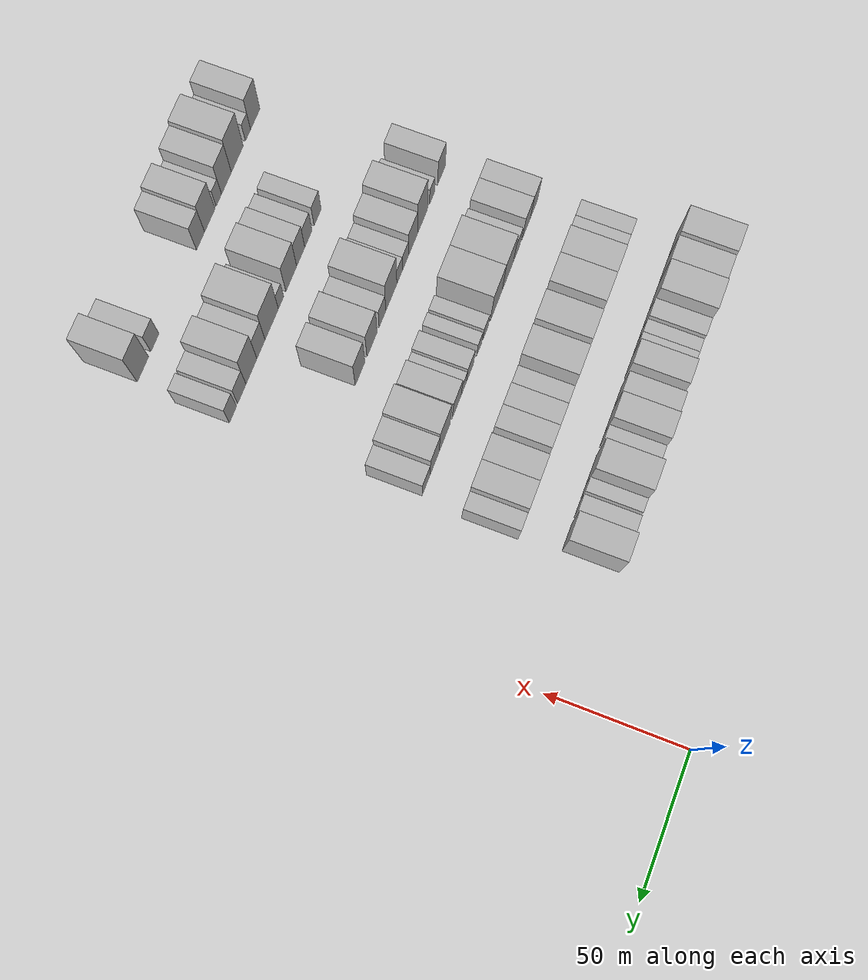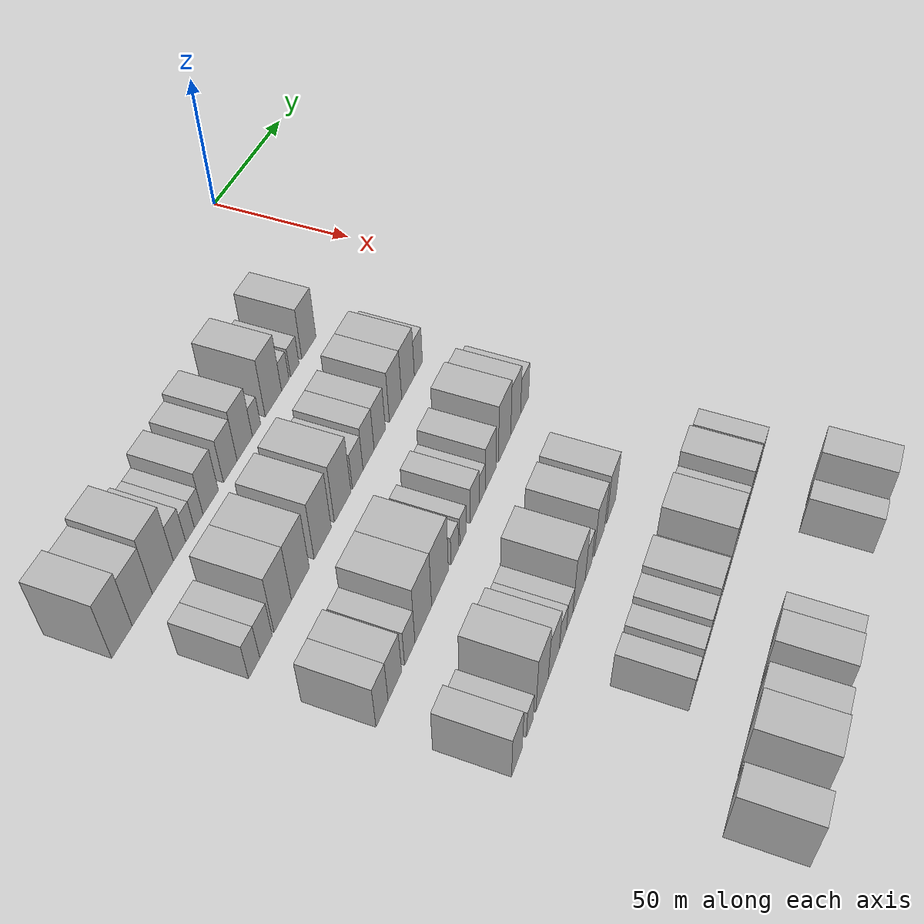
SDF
<sdf version="1.6">
 <world name="default">
  <model name="building_47">
   <static>1</static>
   <pose>50.0000 -161.9570 0 0.000000 0.000000 0.000000</pose>
   <link name="link">
    <pose>0 0 12.00 0 0 0</pose>
    <collision name="collision"><geometry><box><size>20.0000 9.9998 24.0000</size></box></geometry></collision>
    <visual name="visual">
     <cast_shadows>0</cast_shadows>
     <geometry><box><size>20.0000 9.9998 24.0000</size></box></geometry>
     <material>
      <script>
       <uri>model://HANNAS_wall/materials/scripts</uri>
       <uri>model://HANNAS_wall/materials/textures</uri>
       <name>vrc/HANNAS_wall</name>
      </script>
     </material>
    </visual>
   </link>
  </model>
  <model name="building_48">
   <static>1</static>
   <pose>50.0000 -151.8180 0 0.000000 0.000000 0.000000</pose>
   <link name="link">
    <pose>0 0 10.50 0 0 0</pose>
    <collision name="collision"><geometry><box><size>20.0000 10.2782 21.0000</size></box></geometry></collision>
    <visual name="visual">
     <cast_shadows>0</cast_shadows>
     <geometry><box><size>20.0000 10.2782 21.0000</size></box></geometry>
     <material>
      <script>
       <uri>model://HANNAS_wall/materials/scripts</uri>
       <uri>model://HANNAS_wall/materials/textures</uri>
       <name>vrc/HANNAS_wall</name>
      </script>
     </material>
    </visual>
   </link>
  </model>
  <model name="building_49">
   <static>1</static>
   <pose>50.0000 -141.1139 0 0.000000 0.000000 0.000000</pose>
   <link name="link">
    <pose>0 0 12.00 0 0 0</pose>
    <collision name="collision"><geometry><box><size>20.0000 11.1299 24.0000</size></box></geometry></collision>
    <visual name="visual">
     <cast_shadows>0</cast_shadows>
     <geometry><box><size>20.0000 11.1299 24.0000</size></box></geometry>
     <material>
      <script>
       <uri>model://HANNAS_wall/materials/scripts</uri>
       <uri>model://HANNAS_wall/materials/textures</uri>
       <name>vrc/HANNAS_wall</name>
      </script>
     </material>
    </visual>
   </link>
  </model>
  <model name="building_50">
   <static>1</static>
   <pose>50.0000 -132.1988 0 0.000000 0.000000 0.000000</pose>
   <link name="link">
    <pose>0 0 7.50 0 0 0</pose>
    <collision name="collision"><geometry><box><size>20.0000 6.7003 15.0000</size></box></geometry></collision>
    <visual name="visual">
     <cast_shadows>0</cast_shadows>
     <geometry><box><size>20.0000 6.7003 15.0000</size></box></geometry>
     <material>
      <script>
       <uri>model://HANNAS_wall/materials/scripts</uri>
       <uri>model://HANNAS_wall/materials/textures</uri>
       <name>vrc/HANNAS_wall</name>
      </script>
     </material>
    </visual>
   </link>
  </model>
  <model name="building_51">
   <static>1</static>
   <pose>50.0000 -126.4093 0 0.000000 0.000000 0.000000</pose>
   <link name="link">
    <pose>0 0 6.00 0 0 0</pose>
    <collision name="collision"><geometry><box><size>20.0000 4.8786 12.0000</size></box></geometry></collision>
    <visual name="visual">
     <cast_shadows>0</cast_shadows>
     <geometry><box><size>20.0000 4.8786 12.0000</size></box></geometry>
     <material>
      <script>
       <uri>model://HANNAS_wall/materials/scripts</uri>
       <uri>model://HANNAS_wall/materials/textures</uri>
       <name>vrc/HANNAS_wall</name>
      </script>
     </material>
    </visual>
   </link>
  </model>
  <model name="building_52">
   <static>1</static>
   <pose>50.0000 -121.5417 0 0.000000 0.000000 0.000000</pose>
   <link name="link">
    <pose>0 0 6.00 0 0 0</pose>
    <collision name="collision"><geometry><box><size>20.0000 4.8564 12.0000</size></box></geometry></collision>
    <visual name="visual">
     <cast_shadows>0</cast_shadows>
     <geometry><box><size>20.0000 4.8564 12.0000</size></box></geometry>
     <material>
      <script>
       <uri>model://HANNAS_wall/materials/scripts</uri>
       <uri>model://HANNAS_wall/materials/textures</uri>
       <name>vrc/HANNAS_wall</name>
      </script>
     </material>
    </visual>
   </link>
  </model>
  <model name="building_53">
   <static>1</static>
   <pose>50.0000 -114.6435 0 0.000000 0.000000 0.000000</pose>
   <link name="link">
    <pose>0 0 9.00 0 0 0</pose>
    <collision name="collision"><geometry><box><size>20.0000 8.9400 18.0000</size></box></geometry></collision>
    <visual name="visual">
     <cast_shadows>0</cast_shadows>
     <geometry><box><size>20.0000 8.9400 18.0000</size></box></geometry>
     <material>
      <script>
       <uri>model://HANNAS_wall/materials/scripts</uri>
       <uri>model://HANNAS_wall/materials/textures</uri>
       <name>vrc/HANNAS_wall</name>
      </script>
     </material>
    </visual>
   </link>
  </model>
  <model name="building_54">
   <static>1</static>
   <pose>50.0000 -103.0503 0 0.000000 0.000000 0.000000</pose>
   <link name="link">
    <pose>0 0 9.00 0 0 0</pose>
    <collision name="collision"><geometry><box><size>20.0000 8.2464 18.0000</size></box></geometry></collision>
    <visual name="visual">
     <cast_shadows>0</cast_shadows>
     <geometry><box><size>20.0000 8.2464 18.0000</size></box></geometry>
     <material>
      <script>
       <uri>model://HANNAS_wall/materials/scripts</uri>
       <uri>model://HANNAS_wall/materials/textures</uri>
       <name>vrc/HANNAS_wall</name>
      </script>
     </material>
    </visual>
   </link>
  </model>
  <model name="building_55">
   <static>1</static>
   <pose>50.0000 -94.1643 0 0.000000 0.000000 0.000000</pose>
   <link name="link">
    <pose>0 0 10.50 0 0 0</pose>
    <collision name="collision"><geometry><box><size>20.0000 9.5256 21.0000</size></box></geometry></collision>
    <visual name="visual">
     <cast_shadows>0</cast_shadows>
     <geometry><box><size>20.0000 9.5256 21.0000</size></box></geometry>
     <material>
      <script>
       <uri>model://HANNAS_wall/materials/scripts</uri>
       <uri>model://HANNAS_wall/materials/textures</uri>
       <name>vrc/HANNAS_wall</name>
      </script>
     </material>
    </visual>
   </link>
  </model>
  <model name="building_56">
   <static>1</static>
   <pose>50.0000 -86.7919 0 0.000000 0.000000 0.000000</pose>
   <link name="link">
    <pose>0 0 6.00 0 0 0</pose>
    <collision name="collision"><geometry><box><size>20.0000 5.2192 12.0000</size></box></geometry></collision>
    <visual name="visual">
     <cast_shadows>0</cast_shadows>
     <geometry><box><size>20.0000 5.2192 12.0000</size></box></geometry>
     <material>
      <script>
       <uri>model://HANNAS_wall/materials/scripts</uri>
       <uri>model://HANNAS_wall/materials/textures</uri>
       <name>vrc/HANNAS_wall</name>
      </script>
     </material>
    </visual>
   </link>
  </model>
  <model name="building_57">
   <static>1</static>
   <pose>50.0000 -75.7936 0 0.000000 0.000000 0.000000</pose>
   <link name="link">
    <pose>0 0 12.00 0 0 0</pose>
    <collision name="collision"><geometry><box><size>20.0000 10.7773 24.0000</size></box></geometry></collision>
    <visual name="visual">
     <cast_shadows>0</cast_shadows>
     <geometry><box><size>20.0000 10.7773 24.0000</size></box></geometry>
     <material>
      <script>
       <uri>model://HANNAS_wall/materials/scripts</uri>
       <uri>model://HANNAS_wall/materials/textures</uri>
       <name>vrc/HANNAS_wall</name>
      </script>
     </material>
    </visual>
   </link>
  </model>
  <model name="building_58">
   <static>1</static>
   <pose>50.0000 -67.8428 0 0.000000 0.000000 0.000000</pose>
   <link name="link">
    <pose>0 0 6.00 0 0 0</pose>
    <collision name="collision"><geometry><box><size>20.0000 5.1243 12.0000</size></box></geometry></collision>
    <visual name="visual">
     <cast_shadows>0</cast_shadows>
     <geometry><box><size>20.0000 5.1243 12.0000</size></box></geometry>
     <material>
      <script>
       <uri>model://HANNAS_wall/materials/scripts</uri>
       <uri>model://HANNAS_wall/materials/textures</uri>
       <name>vrc/HANNAS_wall</name>
      </script>
     </material>
    </visual>
   </link>
  </model>
  <model name="building_59">
   <static>1</static>
   <pose>50.0000 -61.3414 0 0.000000 0.000000 0.000000</pose>
   <link name="link">
    <pose>0 0 6.00 0 0 0</pose>
    <collision name="collision"><geometry><box><size>20.0000 5.8786 12.0000</size></box></geometry></collision>
    <visual name="visual">
     <cast_shadows>0</cast_shadows>
     <geometry><box><size>20.0000 5.8786 12.0000</size></box></geometry>
     <material>
      <script>
       <uri>model://HANNAS_wall/materials/scripts</uri>
       <uri>model://HANNAS_wall/materials/textures</uri>
       <name>vrc/HANNAS_wall</name>
      </script>
     </material>
    </visual>
   </link>
  </model>
  <model name="building_60">
   <static>1</static>
   <pose>50.0000 -51.3345 0 0.000000 0.000000 0.000000</pose>
   <link name="link">
    <pose>0 0 10.50 0 0 0</pose>
    <collision name="collision"><geometry><box><size>20.0000 10.1353 21.0000</size></box></geometry></collision>
    <visual name="visual">
     <cast_shadows>0</cast_shadows>
     <geometry><box><size>20.0000 10.1353 21.0000</size></box></geometry>
     <material>
      <script>
       <uri>model://HANNAS_wall/materials/scripts</uri>
       <uri>model://HANNAS_wall/materials/textures</uri>
       <name>vrc/HANNAS_wall</name>
      </script>
     </material>
    </visual>
   </link>
  </model>
  <model name="building_168">
   <static>1</static>
   <pose>85.0000 -157.0738 0 0.000000 0.000000 0.000000</pose>
   <link name="link">
    <pose>0 0 7.50 0 0 0</pose>
    <collision name="collision"><geometry><box><size>20.0000 6.1484 15.0000</size></box></geometry></collision>
    <visual name="visual">
     <cast_shadows>0</cast_shadows>
     <geometry><box><size>20.0000 6.1484 15.0000</size></box></geometry>
     <material>
      <script>
       <uri>model://HANNAS_wall/materials/scripts</uri>
       <uri>model://HANNAS_wall/materials/textures</uri>
       <name>vrc/HANNAS_wall</name>
      </script>
     </material>
    </visual>
   </link>
  </model>
  <model name="building_169">
   <static>1</static>
   <pose>85.0000 -150.4906 0 0.000000 0.000000 0.000000</pose>
   <link name="link">
    <pose>0 0 7.50 0 0 0</pose>
    <collision name="collision"><geometry><box><size>20.0000 7.0179 15.0000</size></box></geometry></collision>
    <visual name="visual">
     <cast_shadows>0</cast_shadows>
     <geometry><box><size>20.0000 7.0179 15.0000</size></box></geometry>
     <material>
      <script>
       <uri>model://HANNAS_wall/materials/scripts</uri>
       <uri>model://HANNAS_wall/materials/textures</uri>
       <name>vrc/HANNAS_wall</name>
      </script>
     </material>
    </visual>
   </link>
  </model>
  <model name="building_170">
   <static>1</static>
   <pose>85.0000 -140.8677 0 0.000000 0.000000 0.000000</pose>
   <link name="link">
    <pose>0 0 12.00 0 0 0</pose>
    <collision name="collision"><geometry><box><size>20.0000 10.2279 24.0000</size></box></geometry></collision>
    <visual name="visual">
     <cast_shadows>0</cast_shadows>
     <geometry><box><size>20.0000 10.2279 24.0000</size></box></geometry>
     <material>
      <script>
       <uri>model://HANNAS_wall/materials/scripts</uri>
       <uri>model://HANNAS_wall/materials/textures</uri>
       <name>vrc/HANNAS_wall</name>
      </script>
     </material>
    </visual>
   </link>
  </model>
  <model name="building_171">
   <static>1</static>
   <pose>85.0000 -130.3423 0 0.000000 0.000000 0.000000</pose>
   <link name="link">
    <pose>0 0 12.00 0 0 0</pose>
    <collision name="collision"><geometry><box><size>20.0000 10.8228 24.0000</size></box></geometry></collision>
    <visual name="visual">
     <cast_shadows>0</cast_shadows>
     <geometry><box><size>20.0000 10.8228 24.0000</size></box></geometry>
     <material>
      <script>
       <uri>model://HANNAS_wall/materials/scripts</uri>
       <uri>model://HANNAS_wall/materials/textures</uri>
       <name>vrc/HANNAS_wall</name>
      </script>
     </material>
    </visual>
   </link>
  </model>
  <model name="building_172">
   <static>1</static>
   <pose>85.0000 -116.4584 0 0.000000 0.000000 0.000000</pose>
   <link name="link">
    <pose>0 0 12.00 0 0 0</pose>
    <collision name="collision"><geometry><box><size>20.0000 10.9451 24.0000</size></box></geometry></collision>
    <visual name="visual">
     <cast_shadows>0</cast_shadows>
     <geometry><box><size>20.0000 10.9451 24.0000</size></box></geometry>
     <material>
      <script>
       <uri>model://HANNAS_wall/materials/scripts</uri>
       <uri>model://HANNAS_wall/materials/textures</uri>
       <name>vrc/HANNAS_wall</name>
      </script>
     </material>
    </visual>
   </link>
  </model>
  <model name="building_173">
   <static>1</static>
   <pose>85.0000 -103.4264 0 0.000000 0.000000 0.000000</pose>
   <link name="link">
    <pose>0 0 12.00 0 0 0</pose>
    <collision name="collision"><geometry><box><size>20.0000 11.1188 24.0000</size></box></geometry></collision>
    <visual name="visual">
     <cast_shadows>0</cast_shadows>
     <geometry><box><size>20.0000 11.1188 24.0000</size></box></geometry>
     <material>
      <script>
       <uri>model://HANNAS_wall/materials/scripts</uri>
       <uri>model://HANNAS_wall/materials/textures</uri>
       <name>vrc/HANNAS_wall</name>
      </script>
     </material>
    </visual>
   </link>
  </model>
  <model name="building_174">
   <static>1</static>
   <pose>85.0000 -93.2065 0 0.000000 0.000000 0.000000</pose>
   <link name="link">
    <pose>0 0 7.50 0 0 0</pose>
    <collision name="collision"><geometry><box><size>20.0000 7.3210 15.0000</size></box></geometry></collision>
    <visual name="visual">
     <cast_shadows>0</cast_shadows>
     <geometry><box><size>20.0000 7.3210 15.0000</size></box></geometry>
     <material>
      <script>
       <uri>model://HANNAS_wall/materials/scripts</uri>
       <uri>model://HANNAS_wall/materials/textures</uri>
       <name>vrc/HANNAS_wall</name>
      </script>
     </material>
    </visual>
   </link>
  </model>
  <model name="building_175">
   <static>1</static>
   <pose>85.0000 -85.6010 0 0.000000 0.000000 0.000000</pose>
   <link name="link">
    <pose>0 0 9.00 0 0 0</pose>
    <collision name="collision"><geometry><box><size>20.0000 7.8901 18.0000</size></box></geometry></collision>
    <visual name="visual">
     <cast_shadows>0</cast_shadows>
     <geometry><box><size>20.0000 7.8901 18.0000</size></box></geometry>
     <material>
      <script>
       <uri>model://HANNAS_wall/materials/scripts</uri>
       <uri>model://HANNAS_wall/materials/textures</uri>
       <name>vrc/HANNAS_wall</name>
      </script>
     </material>
    </visual>
   </link>
  </model>
  <model name="building_176">
   <static>1</static>
   <pose>85.0000 -77.5546 0 0.000000 0.000000 0.000000</pose>
   <link name="link">
    <pose>0 0 9.00 0 0 0</pose>
    <collision name="collision"><geometry><box><size>20.0000 8.2029 18.0000</size></box></geometry></collision>
    <visual name="visual">
     <cast_shadows>0</cast_shadows>
     <geometry><box><size>20.0000 8.2029 18.0000</size></box></geometry>
     <material>
      <script>
       <uri>model://HANNAS_wall/materials/scripts</uri>
       <uri>model://HANNAS_wall/materials/textures</uri>
       <name>vrc/HANNAS_wall</name>
      </script>
     </material>
    </visual>
   </link>
  </model>
  <model name="building_177">
   <static>1</static>
   <pose>85.0000 -65.7735 0 0.000000 0.000000 0.000000</pose>
   <link name="link">
    <pose>0 0 10.50 0 0 0</pose>
    <collision name="collision"><geometry><box><size>20.0000 9.3593 21.0000</size></box></geometry></collision>
    <visual name="visual">
     <cast_shadows>0</cast_shadows>
     <geometry><box><size>20.0000 9.3593 21.0000</size></box></geometry>
     <material>
      <script>
       <uri>model://HANNAS_wall/materials/scripts</uri>
       <uri>model://HANNAS_wall/materials/textures</uri>
       <name>vrc/HANNAS_wall</name>
      </script>
     </material>
    </visual>
   </link>
  </model>
  <model name="building_178">
   <static>1</static>
   <pose>85.0000 -56.1351 0 0.000000 0.000000 0.000000</pose>
   <link name="link">
    <pose>0 0 10.50 0 0 0</pose>
    <collision name="collision"><geometry><box><size>20.0000 9.9176 21.0000</size></box></geometry></collision>
    <visual name="visual">
     <cast_shadows>0</cast_shadows>
     <geometry><box><size>20.0000 9.9176 21.0000</size></box></geometry>
     <material>
      <script>
       <uri>model://HANNAS_wall/materials/scripts</uri>
       <uri>model://HANNAS_wall/materials/textures</uri>
       <name>vrc/HANNAS_wall</name>
      </script>
     </material>
    </visual>
   </link>
  </model>
  <model name="building_179">
   <static>1</static>
   <pose>85.0000 -47.9434 0 0.000000 0.000000 0.000000</pose>
   <link name="link">
    <pose>0 0 7.50 0 0 0</pose>
    <collision name="collision"><geometry><box><size>20.0000 6.4659 15.0000</size></box></geometry></collision>
    <visual name="visual">
     <cast_shadows>0</cast_shadows>
     <geometry><box><size>20.0000 6.4659 15.0000</size></box></geometry>
     <material>
      <script>
       <uri>model://HANNAS_wall/materials/scripts</uri>
       <uri>model://HANNAS_wall/materials/textures</uri>
       <name>vrc/HANNAS_wall</name>
      </script>
     </material>
    </visual>
   </link>
  </model>
  <model name="building_294">
   <static>1</static>
   <pose>120.0000 -157.5382 0 0.000000 0.000000 0.000000</pose>
   <link name="link">
    <pose>0 0 9.00 0 0 0</pose>
    <collision name="collision"><geometry><box><size>20.0000 7.5005 18.0000</size></box></geometry></collision>
    <visual name="visual">
     <cast_shadows>0</cast_shadows>
     <geometry><box><size>20.0000 7.5005 18.0000</size></box></geometry>
     <material>
      <script>
       <uri>model://HANNAS_wall/materials/scripts</uri>
       <uri>model://HANNAS_wall/materials/textures</uri>
       <name>vrc/HANNAS_wall</name>
      </script>
     </material>
    </visual>
   </link>
  </model>
  <model name="building_295">
   <static>1</static>
   <pose>120.0000 -149.4985 0 0.000000 0.000000 0.000000</pose>
   <link name="link">
    <pose>0 0 9.00 0 0 0</pose>
    <collision name="collision"><geometry><box><size>20.0000 8.5791 18.0000</size></box></geometry></collision>
    <visual name="visual">
     <cast_shadows>0</cast_shadows>
     <geometry><box><size>20.0000 8.5791 18.0000</size></box></geometry>
     <material>
      <script>
       <uri>model://HANNAS_wall/materials/scripts</uri>
       <uri>model://HANNAS_wall/materials/textures</uri>
       <name>vrc/HANNAS_wall</name>
      </script>
     </material>
    </visual>
   </link>
  </model>
  <model name="building_296">
   <static>1</static>
   <pose>120.0000 -139.7792 0 0.000000 0.000000 0.000000</pose>
   <link name="link">
    <pose>0 0 7.50 0 0 0</pose>
    <collision name="collision"><geometry><box><size>20.0000 6.8595 15.0000</size></box></geometry></collision>
    <visual name="visual">
     <cast_shadows>0</cast_shadows>
     <geometry><box><size>20.0000 6.8595 15.0000</size></box></geometry>
     <material>
      <script>
       <uri>model://HANNAS_wall/materials/scripts</uri>
       <uri>model://HANNAS_wall/materials/textures</uri>
       <name>vrc/HANNAS_wall</name>
      </script>
     </material>
    </visual>
   </link>
  </model>
  <model name="building_297">
   <static>1</static>
   <pose>120.0000 -130.6181 0 0.000000 0.000000 0.000000</pose>
   <link name="link">
    <pose>0 0 12.00 0 0 0</pose>
    <collision name="collision"><geometry><box><size>20.0000 11.4626 24.0000</size></box></geometry></collision>
    <visual name="visual">
     <cast_shadows>0</cast_shadows>
     <geometry><box><size>20.0000 11.4626 24.0000</size></box></geometry>
     <material>
      <script>
       <uri>model://HANNAS_wall/materials/scripts</uri>
       <uri>model://HANNAS_wall/materials/textures</uri>
       <name>vrc/HANNAS_wall</name>
      </script>
     </material>
    </visual>
   </link>
  </model>
  <model name="building_298">
   <static>1</static>
   <pose>120.0000 -118.9094 0 0.000000 0.000000 0.000000</pose>
   <link name="link">
    <pose>0 0 12.00 0 0 0</pose>
    <collision name="collision"><geometry><box><size>20.0000 11.9548 24.0000</size></box></geometry></collision>
    <visual name="visual">
     <cast_shadows>0</cast_shadows>
     <geometry><box><size>20.0000 11.9548 24.0000</size></box></geometry>
     <material>
      <script>
       <uri>model://HANNAS_wall/materials/scripts</uri>
       <uri>model://HANNAS_wall/materials/textures</uri>
       <name>vrc/HANNAS_wall</name>
      </script>
     </material>
    </visual>
   </link>
  </model>
  <model name="building_299">
   <static>1</static>
   <pose>120.0000 -108.1491 0 0.000000 0.000000 0.000000</pose>
   <link name="link">
    <pose>0 0 6.00 0 0 0</pose>
    <collision name="collision"><geometry><box><size>20.0000 5.5658 12.0000</size></box></geometry></collision>
    <visual name="visual">
     <cast_shadows>0</cast_shadows>
     <geometry><box><size>20.0000 5.5658 12.0000</size></box></geometry>
     <material>
      <script>
       <uri>model://HANNAS_wall/materials/scripts</uri>
       <uri>model://HANNAS_wall/materials/textures</uri>
       <name>vrc/HANNAS_wall</name>
      </script>
     </material>
    </visual>
   </link>
  </model>
  <model name="building_300">
   <static>1</static>
   <pose>120.0000 -101.9015 0 0.000000 0.000000 0.000000</pose>
   <link name="link">
    <pose>0 0 6.00 0 0 0</pose>
    <collision name="collision"><geometry><box><size>20.0000 4.9295 12.0000</size></box></geometry></collision>
    <visual name="visual">
     <cast_shadows>0</cast_shadows>
     <geometry><box><size>20.0000 4.9295 12.0000</size></box></geometry>
     <material>
      <script>
       <uri>model://HANNAS_wall/materials/scripts</uri>
       <uri>model://HANNAS_wall/materials/textures</uri>
       <name>vrc/HANNAS_wall</name>
      </script>
     </material>
    </visual>
   </link>
  </model>
  <model name="building_301">
   <static>1</static>
   <pose>120.0000 -92.9369 0 0.000000 0.000000 0.000000</pose>
   <link name="link">
    <pose>0 0 7.50 0 0 0</pose>
    <collision name="collision"><geometry><box><size>20.0000 6.9997 15.0000</size></box></geometry></collision>
    <visual name="visual">
     <cast_shadows>0</cast_shadows>
     <geometry><box><size>20.0000 6.9997 15.0000</size></box></geometry>
     <material>
      <script>
       <uri>model://HANNAS_wall/materials/scripts</uri>
       <uri>model://HANNAS_wall/materials/textures</uri>
       <name>vrc/HANNAS_wall</name>
      </script>
     </material>
    </visual>
   </link>
  </model>
  <model name="building_302">
   <static>1</static>
   <pose>120.0000 -86.9117 0 0.000000 0.000000 0.000000</pose>
   <link name="link">
    <pose>0 0 6.00 0 0 0</pose>
    <collision name="collision"><geometry><box><size>20.0000 5.0507 12.0000</size></box></geometry></collision>
    <visual name="visual">
     <cast_shadows>0</cast_shadows>
     <geometry><box><size>20.0000 5.0507 12.0000</size></box></geometry>
     <material>
      <script>
       <uri>model://HANNAS_wall/materials/scripts</uri>
       <uri>model://HANNAS_wall/materials/textures</uri>
       <name>vrc/HANNAS_wall</name>
      </script>
     </material>
    </visual>
   </link>
  </model>
  <model name="building_303">
   <static>1</static>
   <pose>120.0000 -80.0144 0 0.000000 0.000000 0.000000</pose>
   <link name="link">
    <pose>0 0 9.00 0 0 0</pose>
    <collision name="collision"><geometry><box><size>20.0000 8.7440 18.0000</size></box></geometry></collision>
    <visual name="visual">
     <cast_shadows>0</cast_shadows>
     <geometry><box><size>20.0000 8.7440 18.0000</size></box></geometry>
     <material>
      <script>
       <uri>model://HANNAS_wall/materials/scripts</uri>
       <uri>model://HANNAS_wall/materials/textures</uri>
       <name>vrc/HANNAS_wall</name>
      </script>
     </material>
    </visual>
   </link>
  </model>
  <model name="building_304">
   <static>1</static>
   <pose>120.0000 -68.3629 0 0.000000 0.000000 0.000000</pose>
   <link name="link">
    <pose>0 0 12.00 0 0 0</pose>
    <collision name="collision"><geometry><box><size>20.0000 10.5590 24.0000</size></box></geometry></collision>
    <visual name="visual">
     <cast_shadows>0</cast_shadows>
     <geometry><box><size>20.0000 10.5590 24.0000</size></box></geometry>
     <material>
      <script>
       <uri>model://HANNAS_wall/materials/scripts</uri>
       <uri>model://HANNAS_wall/materials/textures</uri>
       <name>vrc/HANNAS_wall</name>
      </script>
     </material>
    </visual>
   </link>
  </model>
  <model name="building_305">
   <static>1</static>
   <pose>120.0000 -58.7427 0 0.000000 0.000000 0.000000</pose>
   <link name="link">
    <pose>0 0 10.50 0 0 0</pose>
    <collision name="collision"><geometry><box><size>20.0000 8.6813 21.0000</size></box></geometry></collision>
    <visual name="visual">
     <cast_shadows>0</cast_shadows>
     <geometry><box><size>20.0000 8.6813 21.0000</size></box></geometry>
     <material>
      <script>
       <uri>model://HANNAS_wall/materials/scripts</uri>
       <uri>model://HANNAS_wall/materials/textures</uri>
       <name>vrc/HANNAS_wall</name>
      </script>
     </material>
    </visual>
   </link>
  </model>
  <model name="building_306">
   <static>1</static>
   <pose>120.0000 -50.7534 0 0.000000 0.000000 0.000000</pose>
   <link name="link">
    <pose>0 0 7.50 0 0 0</pose>
    <collision name="collision"><geometry><box><size>20.0000 7.2975 15.0000</size></box></geometry></collision>
    <visual name="visual">
     <cast_shadows>0</cast_shadows>
     <geometry><box><size>20.0000 7.2975 15.0000</size></box></geometry>
     <material>
      <script>
       <uri>model://HANNAS_wall/materials/scripts</uri>
       <uri>model://HANNAS_wall/materials/textures</uri>
       <name>vrc/HANNAS_wall</name>
      </script>
     </material>
    </visual>
   </link>
  </model>
  <model name="building_416">
   <static>1</static>
   <pose>155.0000 -158.0634 0 0.000000 0.000000 0.000000</pose>
   <link name="link">
    <pose>0 0 9.00 0 0 0</pose>
    <collision name="collision"><geometry><box><size>20.0000 7.7922 18.0000</size></box></geometry></collision>
    <visual name="visual">
     <cast_shadows>0</cast_shadows>
     <geometry><box><size>20.0000 7.7922 18.0000</size></box></geometry>
     <material>
      <script>
       <uri>model://HANNAS_wall/materials/scripts</uri>
       <uri>model://HANNAS_wall/materials/textures</uri>
       <name>vrc/HANNAS_wall</name>
      </script>
     </material>
    </visual>
   </link>
  </model>
  <model name="building_417">
   <static>1</static>
   <pose>155.0000 -148.6372 0 0.000000 0.000000 0.000000</pose>
   <link name="link">
    <pose>0 0 6.00 0 0 0</pose>
    <collision name="collision"><geometry><box><size>20.0000 5.0602 12.0000</size></box></geometry></collision>
    <visual name="visual">
     <cast_shadows>0</cast_shadows>
     <geometry><box><size>20.0000 5.0602 12.0000</size></box></geometry>
     <material>
      <script>
       <uri>model://HANNAS_wall/materials/scripts</uri>
       <uri>model://HANNAS_wall/materials/textures</uri>
       <name>vrc/HANNAS_wall</name>
      </script>
     </material>
    </visual>
   </link>
  </model>
  <model name="building_418">
   <static>1</static>
   <pose>155.0000 -139.2772 0 0.000000 0.000000 0.000000</pose>
   <link name="link">
    <pose>0 0 12.00 0 0 0</pose>
    <collision name="collision"><geometry><box><size>20.0000 9.6598 24.0000</size></box></geometry></collision>
    <visual name="visual">
     <cast_shadows>0</cast_shadows>
     <geometry><box><size>20.0000 9.6598 24.0000</size></box></geometry>
     <material>
      <script>
       <uri>model://HANNAS_wall/materials/scripts</uri>
       <uri>model://HANNAS_wall/materials/textures</uri>
       <name>vrc/HANNAS_wall</name>
      </script>
     </material>
    </visual>
   </link>
  </model>
  <model name="building_419">
   <static>1</static>
   <pose>155.0000 -129.9913 0 0.000000 0.000000 0.000000</pose>
   <link name="link">
    <pose>0 0 9.00 0 0 0</pose>
    <collision name="collision"><geometry><box><size>20.0000 8.9119 18.0000</size></box></geometry></collision>
    <visual name="visual">
     <cast_shadows>0</cast_shadows>
     <geometry><box><size>20.0000 8.9119 18.0000</size></box></geometry>
     <material>
      <script>
       <uri>model://HANNAS_wall/materials/scripts</uri>
       <uri>model://HANNAS_wall/materials/textures</uri>
       <name>vrc/HANNAS_wall</name>
      </script>
     </material>
    </visual>
   </link>
  </model>
  <model name="building_420">
   <static>1</static>
   <pose>155.0000 -122.6003 0 0.000000 0.000000 0.000000</pose>
   <link name="link">
    <pose>0 0 6.00 0 0 0</pose>
    <collision name="collision"><geometry><box><size>20.0000 5.8702 12.0000</size></box></geometry></collision>
    <visual name="visual">
     <cast_shadows>0</cast_shadows>
     <geometry><box><size>20.0000 5.8702 12.0000</size></box></geometry>
     <material>
      <script>
       <uri>model://HANNAS_wall/materials/scripts</uri>
       <uri>model://HANNAS_wall/materials/textures</uri>
       <name>vrc/HANNAS_wall</name>
      </script>
     </material>
    </visual>
   </link>
  </model>
  <model name="building_421">
   <static>1</static>
   <pose>155.0000 -116.9389 0 0.000000 0.000000 0.000000</pose>
   <link name="link">
    <pose>0 0 6.00 0 0 0</pose>
    <collision name="collision"><geometry><box><size>20.0000 5.4526 12.0000</size></box></geometry></collision>
    <visual name="visual">
     <cast_shadows>0</cast_shadows>
     <geometry><box><size>20.0000 5.4526 12.0000</size></box></geometry>
     <material>
      <script>
       <uri>model://HANNAS_wall/materials/scripts</uri>
       <uri>model://HANNAS_wall/materials/textures</uri>
       <name>vrc/HANNAS_wall</name>
      </script>
     </material>
    </visual>
   </link>
  </model>
  <model name="building_422">
   <static>1</static>
   <pose>155.0000 -108.8960 0 0.000000 0.000000 0.000000</pose>
   <link name="link">
    <pose>0 0 12.00 0 0 0</pose>
    <collision name="collision"><geometry><box><size>20.0000 10.6330 24.0000</size></box></geometry></collision>
    <visual name="visual">
     <cast_shadows>0</cast_shadows>
     <geometry><box><size>20.0000 10.6330 24.0000</size></box></geometry>
     <material>
      <script>
       <uri>model://HANNAS_wall/materials/scripts</uri>
       <uri>model://HANNAS_wall/materials/textures</uri>
       <name>vrc/HANNAS_wall</name>
      </script>
     </material>
    </visual>
   </link>
  </model>
  <model name="building_423">
   <static>1</static>
   <pose>155.0000 -100.4445 0 0.000000 0.000000 0.000000</pose>
   <link name="link">
    <pose>0 0 7.50 0 0 0</pose>
    <collision name="collision"><geometry><box><size>20.0000 6.2701 15.0000</size></box></geometry></collision>
    <visual name="visual">
     <cast_shadows>0</cast_shadows>
     <geometry><box><size>20.0000 6.2701 15.0000</size></box></geometry>
     <material>
      <script>
       <uri>model://HANNAS_wall/materials/scripts</uri>
       <uri>model://HANNAS_wall/materials/textures</uri>
       <name>vrc/HANNAS_wall</name>
      </script>
     </material>
    </visual>
   </link>
  </model>
  <model name="building_424">
   <static>1</static>
   <pose>155.0000 -90.5461 0 0.000000 0.000000 0.000000</pose>
   <link name="link">
    <pose>0 0 10.50 0 0 0</pose>
    <collision name="collision"><geometry><box><size>20.0000 9.5267 21.0000</size></box></geometry></collision>
    <visual name="visual">
     <cast_shadows>0</cast_shadows>
     <geometry><box><size>20.0000 9.5267 21.0000</size></box></geometry>
     <material>
      <script>
       <uri>model://HANNAS_wall/materials/scripts</uri>
       <uri>model://HANNAS_wall/materials/textures</uri>
       <name>vrc/HANNAS_wall</name>
      </script>
     </material>
    </visual>
   </link>
  </model>
  <model name="building_425">
   <static>1</static>
   <pose>155.0000 -79.3172 0 0.000000 0.000000 0.000000</pose>
   <link name="link">
    <pose>0 0 10.50 0 0 0</pose>
    <collision name="collision"><geometry><box><size>20.0000 8.9310 21.0000</size></box></geometry></collision>
    <visual name="visual">
     <cast_shadows>0</cast_shadows>
     <geometry><box><size>20.0000 8.9310 21.0000</size></box></geometry>
     <material>
      <script>
       <uri>model://HANNAS_wall/materials/scripts</uri>
       <uri>model://HANNAS_wall/materials/textures</uri>
       <name>vrc/HANNAS_wall</name>
      </script>
     </material>
    </visual>
   </link>
  </model>
  <model name="building_542">
   <static>1</static>
   <pose>190.0000 -127.4809 0 0.000000 0.000000 0.000000</pose>
   <link name="link">
    <pose>0 0 7.50 0 0 0</pose>
    <collision name="collision"><geometry><box><size>20.0000 6.6501 15.0000</size></box></geometry></collision>
    <visual name="visual">
     <cast_shadows>0</cast_shadows>
     <geometry><box><size>20.0000 6.6501 15.0000</size></box></geometry>
     <material>
      <script>
       <uri>model://HANNAS_wall/materials/scripts</uri>
       <uri>model://HANNAS_wall/materials/textures</uri>
       <name>vrc/HANNAS_wall</name>
      </script>
     </material>
    </visual>
   </link>
  </model>
  <model name="building_543">
   <static>1</static>
   <pose>190.0000 -118.8023 0 0.000000 0.000000 0.000000</pose>
   <link name="link">
    <pose>0 0 7.50 0 0 0</pose>
    <collision name="collision"><geometry><box><size>20.0000 6.7070 15.0000</size></box></geometry></collision>
    <visual name="visual">
     <cast_shadows>0</cast_shadows>
     <geometry><box><size>20.0000 6.7070 15.0000</size></box></geometry>
     <material>
      <script>
       <uri>model://HANNAS_wall/materials/scripts</uri>
       <uri>model://HANNAS_wall/materials/textures</uri>
       <name>vrc/HANNAS_wall</name>
      </script>
     </material>
    </visual>
   </link>
  </model>
  <model name="building_544">
   <static>1</static>
   <pose>190.0000 -111.6887 0 0.000000 0.000000 0.000000</pose>
   <link name="link">
    <pose>0 0 9.00 0 0 0</pose>
    <collision name="collision"><geometry><box><size>20.0000 7.5203 18.0000</size></box></geometry></collision>
    <visual name="visual">
     <cast_shadows>0</cast_shadows>
     <geometry><box><size>20.0000 7.5203 18.0000</size></box></geometry>
     <material>
      <script>
       <uri>model://HANNAS_wall/materials/scripts</uri>
       <uri>model://HANNAS_wall/materials/textures</uri>
       <name>vrc/HANNAS_wall</name>
      </script>
     </material>
    </visual>
   </link>
  </model>
  <model name="building_545">
   <static>1</static>
   <pose>190.0000 -102.9376 0 0.000000 0.000000 0.000000</pose>
   <link name="link">
    <pose>0 0 10.50 0 0 0</pose>
    <collision name="collision"><geometry><box><size>20.0000 9.9818 21.0000</size></box></geometry></collision>
    <visual name="visual">
     <cast_shadows>0</cast_shadows>
     <geometry><box><size>20.0000 9.9818 21.0000</size></box></geometry>
     <material>
      <script>
       <uri>model://HANNAS_wall/materials/scripts</uri>
       <uri>model://HANNAS_wall/materials/textures</uri>
       <name>vrc/HANNAS_wall</name>
      </script>
     </material>
    </visual>
   </link>
  </model>
  <model name="building_546">
   <static>1</static>
   <pose>190.0000 -93.5176 0 0.000000 0.000000 0.000000</pose>
   <link name="link">
    <pose>0 0 6.00 0 0 0</pose>
    <collision name="collision"><geometry><box><size>20.0000 4.8582 12.0000</size></box></geometry></collision>
    <visual name="visual">
     <cast_shadows>0</cast_shadows>
     <geometry><box><size>20.0000 4.8582 12.0000</size></box></geometry>
     <material>
      <script>
       <uri>model://HANNAS_wall/materials/scripts</uri>
       <uri>model://HANNAS_wall/materials/textures</uri>
       <name>vrc/HANNAS_wall</name>
      </script>
     </material>
    </visual>
   </link>
  </model>
  <model name="building_547">
   <static>1</static>
   <pose>190.0000 -85.0967 0 0.000000 0.000000 0.000000</pose>
   <link name="link">
    <pose>0 0 12.00 0 0 0</pose>
    <collision name="collision"><geometry><box><size>20.0000 11.9838 24.0000</size></box></geometry></collision>
    <visual name="visual">
     <cast_shadows>0</cast_shadows>
     <geometry><box><size>20.0000 11.9838 24.0000</size></box></geometry>
     <material>
      <script>
       <uri>model://HANNAS_wall/materials/scripts</uri>
       <uri>model://HANNAS_wall/materials/textures</uri>
       <name>vrc/HANNAS_wall</name>
      </script>
     </material>
    </visual>
   </link>
  </model>
  <model name="building_548">
   <static>1</static>
   <pose>190.0000 -75.4051 0 0.000000 0.000000 0.000000</pose>
   <link name="link">
    <pose>0 0 9.00 0 0 0</pose>
    <collision name="collision"><geometry><box><size>20.0000 7.3994 18.0000</size></box></geometry></collision>
    <visual name="visual">
     <cast_shadows>0</cast_shadows>
     <geometry><box><size>20.0000 7.3994 18.0000</size></box></geometry>
     <material>
      <script>
       <uri>model://HANNAS_wall/materials/scripts</uri>
       <uri>model://HANNAS_wall/materials/textures</uri>
       <name>vrc/HANNAS_wall</name>
      </script>
     </material>
    </visual>
   </link>
  </model>
  <model name="building_549">
   <static>1</static>
   <pose>190.0000 -66.8447 0 0.000000 0.000000 0.000000</pose>
   <link name="link">
    <pose>0 0 12.00 0 0 0</pose>
    <collision name="collision"><geometry><box><size>20.0000 9.7215 24.0000</size></box></geometry></collision>
    <visual name="visual">
     <cast_shadows>0</cast_shadows>
     <geometry><box><size>20.0000 9.7215 24.0000</size></box></geometry>
     <material>
      <script>
       <uri>model://HANNAS_wall/materials/scripts</uri>
       <uri>model://HANNAS_wall/materials/textures</uri>
       <name>vrc/HANNAS_wall</name>
      </script>
     </material>
    </visual>
   </link>
  </model>
  <model name="building_550">
   <static>1</static>
   <pose>190.0000 -58.2932 0 0.000000 0.000000 0.000000</pose>
   <link name="link">
    <pose>0 0 7.50 0 0 0</pose>
    <collision name="collision"><geometry><box><size>20.0000 7.3815 15.0000</size></box></geometry></collision>
    <visual name="visual">
     <cast_shadows>0</cast_shadows>
     <geometry><box><size>20.0000 7.3815 15.0000</size></box></geometry>
     <material>
      <script>
       <uri>model://HANNAS_wall/materials/scripts</uri>
       <uri>model://HANNAS_wall/materials/textures</uri>
       <name>vrc/HANNAS_wall</name>
      </script>
     </material>
    </visual>
   </link>
  </model>
  <model name="building_551">
   <static>1</static>
   <pose>190.0000 -50.4479 0 0.000000 0.000000 0.000000</pose>
   <link name="link">
    <pose>0 0 7.50 0 0 0</pose>
    <collision name="collision"><geometry><box><size>20.0000 6.3090 15.0000</size></box></geometry></collision>
    <visual name="visual">
     <cast_shadows>0</cast_shadows>
     <geometry><box><size>20.0000 6.3090 15.0000</size></box></geometry>
     <material>
      <script>
       <uri>model://HANNAS_wall/materials/scripts</uri>
       <uri>model://HANNAS_wall/materials/textures</uri>
       <name>vrc/HANNAS_wall</name>
      </script>
     </material>
    </visual>
   </link>
  </model>
  <model name="building_667">
   <static>1</static>
   <pose>225.0000 -154.6159 0 0.000000 0.000000 0.000000</pose>
   <link name="link">
    <pose>0 0 10.50 0 0 0</pose>
    <collision name="collision"><geometry><box><size>20.0000 8.7183 21.0000</size></box></geometry></collision>
    <visual name="visual">
     <cast_shadows>0</cast_shadows>
     <geometry><box><size>20.0000 8.7183 21.0000</size></box></geometry>
     <material>
      <script>
       <uri>model://HANNAS_wall/materials/scripts</uri>
       <uri>model://HANNAS_wall/materials/textures</uri>
       <name>vrc/HANNAS_wall</name>
      </script>
     </material>
    </visual>
   </link>
  </model>
  <model name="building_668">
   <static>1</static>
   <pose>225.0000 -147.8542 0 0.000000 0.000000 0.000000</pose>
   <link name="link">
    <pose>0 0 6.00 0 0 0</pose>
    <collision name="collision"><geometry><box><size>20.0000 4.8052 12.0000</size></box></geometry></collision>
    <visual name="visual">
     <cast_shadows>0</cast_shadows>
     <geometry><box><size>20.0000 4.8052 12.0000</size></box></geometry>
     <material>
      <script>
       <uri>model://HANNAS_wall/materials/scripts</uri>
       <uri>model://HANNAS_wall/materials/textures</uri>
       <name>vrc/HANNAS_wall</name>
      </script>
     </material>
    </visual>
   </link>
  </model>
  <model name="building_669">
   <static>1</static>
   <pose>225.0000 -138.0123 0 0.000000 0.000000 0.000000</pose>
   <link name="link">
    <pose>0 0 12.00 0 0 0</pose>
    <collision name="collision"><geometry><box><size>20.0000 10.8786 24.0000</size></box></geometry></collision>
    <visual name="visual">
     <cast_shadows>0</cast_shadows>
     <geometry><box><size>20.0000 10.8786 24.0000</size></box></geometry>
     <material>
      <script>
       <uri>model://HANNAS_wall/materials/scripts</uri>
       <uri>model://HANNAS_wall/materials/textures</uri>
       <name>vrc/HANNAS_wall</name>
      </script>
     </material>
    </visual>
   </link>
  </model>
  <model name="building_670">
   <static>1</static>
   <pose>225.0000 -128.0513 0 0.000000 0.000000 0.000000</pose>
   <link name="link">
    <pose>0 0 10.50 0 0 0</pose>
    <collision name="collision"><geometry><box><size>20.0000 9.0433 21.0000</size></box></geometry></collision>
    <visual name="visual">
     <cast_shadows>0</cast_shadows>
     <geometry><box><size>20.0000 9.0433 21.0000</size></box></geometry>
     <material>
      <script>
       <uri>model://HANNAS_wall/materials/scripts</uri>
       <uri>model://HANNAS_wall/materials/textures</uri>
       <name>vrc/HANNAS_wall</name>
      </script>
     </material>
    </visual>
   </link>
  </model>
  <model name="building_671">
   <static>1</static>
   <pose>225.0000 -121.0665 0 0.000000 0.000000 0.000000</pose>
   <link name="link">
    <pose>0 0 6.00 0 0 0</pose>
    <collision name="collision"><geometry><box><size>20.0000 4.9264 12.0000</size></box></geometry></collision>
    <visual name="visual">
     <cast_shadows>0</cast_shadows>
     <geometry><box><size>20.0000 4.9264 12.0000</size></box></geometry>
     <material>
      <script>
       <uri>model://HANNAS_wall/materials/scripts</uri>
       <uri>model://HANNAS_wall/materials/textures</uri>
       <name>vrc/HANNAS_wall</name>
      </script>
     </material>
    </visual>
   </link>
  </model>
  <model name="building_672">
   <static>1</static>
   <pose>225.0000 -112.9262 0 0.000000 0.000000 0.000000</pose>
   <link name="link">
    <pose>0 0 10.50 0 0 0</pose>
    <collision name="collision"><geometry><box><size>20.0000 9.3542 21.0000</size></box></geometry></collision>
    <visual name="visual">
     <cast_shadows>0</cast_shadows>
     <geometry><box><size>20.0000 9.3542 21.0000</size></box></geometry>
     <material>
      <script>
       <uri>model://HANNAS_wall/materials/scripts</uri>
       <uri>model://HANNAS_wall/materials/textures</uri>
       <name>vrc/HANNAS_wall</name>
      </script>
     </material>
    </visual>
   </link>
  </model>
  <model name="building_673">
   <static>1</static>
   <pose>225.0000 -104.6377 0 0.000000 0.000000 0.000000</pose>
   <link name="link">
    <pose>0 0 9.00 0 0 0</pose>
    <collision name="collision"><geometry><box><size>20.0000 7.2227 18.0000</size></box></geometry></collision>
    <visual name="visual">
     <cast_shadows>0</cast_shadows>
     <geometry><box><size>20.0000 7.2227 18.0000</size></box></geometry>
     <material>
      <script>
       <uri>model://HANNAS_wall/materials/scripts</uri>
       <uri>model://HANNAS_wall/materials/textures</uri>
       <name>vrc/HANNAS_wall</name>
      </script>
     </material>
    </visual>
   </link>
  </model>
  <model name="building_674">
   <static>1</static>
   <pose>225.0000 -64.5677 0 0.000000 0.000000 0.000000</pose>
   <link name="link">
    <pose>0 0 7.50 0 0 0</pose>
    <collision name="collision"><geometry><box><size>20.0000 6.9725 15.0000</size></box></geometry></collision>
    <visual name="visual">
     <cast_shadows>0</cast_shadows>
     <geometry><box><size>20.0000 6.9725 15.0000</size></box></geometry>
     <material>
      <script>
       <uri>model://HANNAS_wall/materials/scripts</uri>
       <uri>model://HANNAS_wall/materials/textures</uri>
       <name>vrc/HANNAS_wall</name>
      </script>
     </material>
    </visual>
   </link>
  </model>
  <model name="building_675">
   <static>1</static>
   <pose>225.0000 -54.2501 0 0.000000 0.000000 0.000000</pose>
   <link name="link">
    <pose>0 0 12.00 0 0 0</pose>
    <collision name="collision"><geometry><box><size>20.0000 9.6627 24.0000</size></box></geometry></collision>
    <visual name="visual">
     <cast_shadows>0</cast_shadows>
     <geometry><box><size>20.0000 9.6627 24.0000</size></box></geometry>
     <material>
      <script>
       <uri>model://HANNAS_wall/materials/scripts</uri>
       <uri>model://HANNAS_wall/materials/textures</uri>
       <name>vrc/HANNAS_wall</name>
      </script>
     </material>
    </visual>
   </link>
  </model>
 </world>
</sdf>
